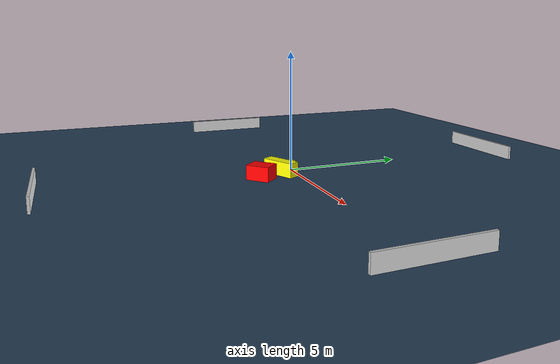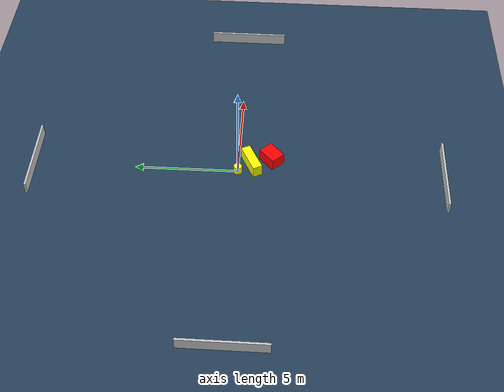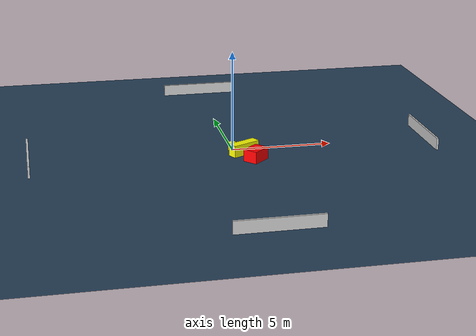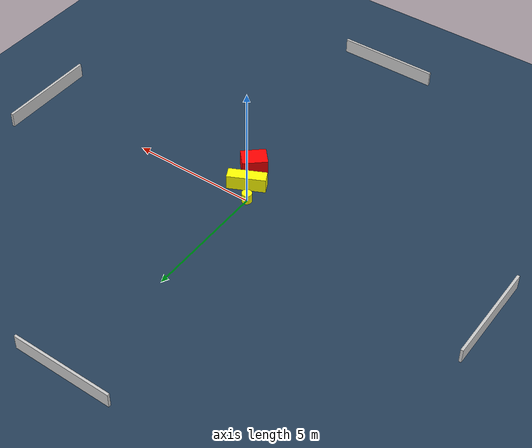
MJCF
<?xml version="1.0" ?>
<mujoco model="generated_environment">
  <option timestep="0.01" integrator="RK4" cone="elliptic"/>
  <default>
    <geom density="1"/>
  </default>
  <asset>
    <texture builtin="gradient" height="3072" name="skybox" rgb1="0.3 0.5 0.7" rgb2="0 0 0" type="skybox" width="512"/>
    <texture builtin="checker" height="300" name="groundplane" rgb1="0.2 0.3 0.4" rgb2="0.1 0.2 0.3" type="2d" width="300"/>
    <material name="groundplane" reflectance="0.2" texrepeat="5 5" texture="groundplane"/>
  </asset>
  <worldbody>
    <light dir="0 0 -1" directional="true" pos="0 0 1.5"/>
    <geom condim="3" friction="0.5 0.005 0.001" material="groundplane" name="floor" pos="0 0 0" size="0 0 0.05" type="plane"/>
    <body name="walls">
      <geom name="wall_1" condim="4" pos="-10.0 0.0 0.3" rgba="0.800000011920929 0.800000011920929 0.800000011920929 1.0" size="0.05 2.0 0.3" type="box"/>
      <geom name="wall_2" condim="4" pos="10.0 0.0 0.3" rgba="0.800000011920929 0.800000011920929 0.800000011920929 1.0" size="0.05 2.0 0.3" type="box"/>
      <geom name="wall_3" condim="4" pos="0.0 -10.0 0.3" rgba="0.800000011920929 0.800000011920929 0.800000011920929 1.0" size="2.0 0.05 0.3" type="box"/>
      <geom name="wall_4" condim="4" pos="0.0 10.0 0.3" rgba="0.800000011920929 0.800000011920929 0.800000011920929 1.0" size="2.0 0.05 0.3" type="box"/>
    </body>
    <body name="robot">
      <joint name="joint_x" type="slide" pos="0 0 0" axis="1 0 0"/>
      <joint name="joint_y" type="slide" pos="0 0 0" axis="0 1 0"/>
      <geom name="robot" type="cylinder" pos="0.0 0.0 0.2" size="0.2 0.2 0.0" mass="5.0" friction="1.0 0.005 0.0001" condim="4" rgba="1.0 1.0 0.0 1.0"/>
    </body>
    <body name="obstacle_1_movable">
      <geom name="obstacle_1_movable" condim="4" pos="0.460842291552178 -0.6408301378873424 0.3" euler="0 0 296.4020106139611" friction="0.0 0.005 0.001" rgba="1.0 1.0 0.0 1.0" size="0.23452019956913545 0.7456513598303136 0.3" type="box" mass="0.1"/>
      <joint type="free"/>
    </body>
    <body name="obstacle_2_static">
      <geom name="obstacle_2_static" condim="4" pos="0.8391941813259929 -1.6190368880178523 0.3" euler="0 0 312.14809015129674" friction="0.0 0.005 0.001" rgba="1.0 0.0 0.0 1.0" size="0.37123760708344705 0.4968560364144664 0.3" type="box"/>
    </body>
  </worldbody>
  <actuator>
    <motor name="actuator_x" joint="joint_x" gear="1" ctrlrange="-1 1"/>
    <motor name="actuator_y" joint="joint_y" gear="1" ctrlrange="-1 1"/>
  </actuator>
</mujoco>
